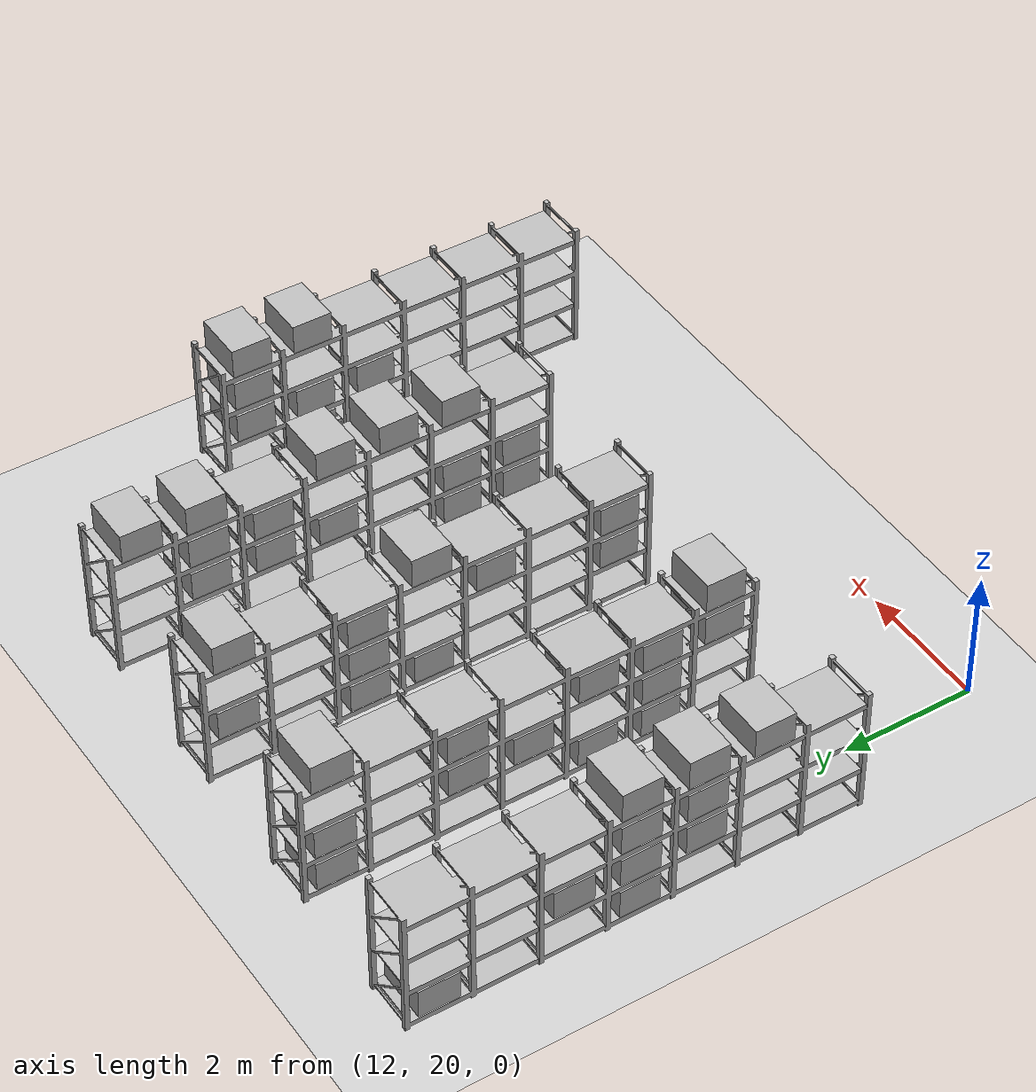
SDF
<sdf version="1.6">
 <world name="default">
  <model name="ground_plane">
   <static>1</static>
   <link name="link">
    <collision name="collision">
     <geometry><plane><normal>0 0 1</normal><size>100 100</size></plane></geometry>
     <surface><friction><ode><mu>100</mu><mu2>50</mu2></ode></friction></surface>
    </collision>
    <visual name="visual">
     <cast_shadows>0</cast_shadows>
     <geometry><plane><normal>0 0 1</normal><size>100 100</size></plane></geometry>
     <material>
      <script><uri>file://media/materials/scripts/gazebo.material</uri><name>Gazebo/Grey</name></script>
     </material>
    </visual>
   </link>
  </model>
  <include>
   <name>rack_C1_0</name>
   <uri>model://warehouse_rack_4lvl_6bay</uri>
   <pose>21.162 23.255 0 0 0 3.1416</pose>
  </include>
  <model name="box_C_001">
   <pose>21.162 25.654 0.907 0 0 3.1416</pose>
   <link name="link">
    <inertial>
     <mass>8.0</mass>
     <inertia><ixx>0.37500</ixx><iyy>0.54060</iyy><izz>0.64560</izz><ixy>0</ixy><ixz>0</ixz><iyz>0</iyz></inertia>
    </inertial>
    <collision name="collision">
     <geometry><box><size>0.78 0.6 0.45</size></box></geometry>
     <surface><friction><ode><mu>1.0</mu><mu2>1.0</mu2></ode></friction></surface>
    </collision>
    <visual name="visual">
     <cast_shadows>0</cast_shadows>
     <geometry><box><size>0.78 0.6 0.45</size></box></geometry>
     <material>
      <script>
       <uri>model://labeled_boxes/materials/scripts</uri>
       <uri>model://labeled_boxes/materials/textures</uri>
       <name>LabeledBox/C-001</name>
      </script>
     </material>
    </visual>
   </link>
  </model>
  <model name="box_C_002">
   <pose>21.162 25.654 1.487 0 0 3.1416</pose>
   <link name="link">
    <inertial>
     <mass>8.0</mass>
     <inertia><ixx>0.37500</ixx><iyy>0.54060</iyy><izz>0.64560</izz><ixy>0</ixy><ixz>0</ixz><iyz>0</iyz></inertia>
    </inertial>
    <collision name="collision">
     <geometry><box><size>0.78 0.6 0.45</size></box></geometry>
     <surface><friction><ode><mu>1.0</mu><mu2>1.0</mu2></ode></friction></surface>
    </collision>
    <visual name="visual">
     <cast_shadows>0</cast_shadows>
     <geometry><box><size>0.78 0.6 0.45</size></box></geometry>
     <material>
      <script>
       <uri>model://labeled_boxes/materials/scripts</uri>
       <uri>model://labeled_boxes/materials/textures</uri>
       <name>LabeledBox/C-002</name>
      </script>
     </material>
    </visual>
   </link>
  </model>
  <model name="box_C_003">
   <pose>21.162 25.654 2.067 0 0 3.1416</pose>
   <link name="link">
    <inertial>
     <mass>8.0</mass>
     <inertia><ixx>0.37500</ixx><iyy>0.54060</iyy><izz>0.64560</izz><ixy>0</ixy><ixz>0</ixz><iyz>0</iyz></inertia>
    </inertial>
    <collision name="collision">
     <geometry><box><size>0.78 0.6 0.45</size></box></geometry>
     <surface><friction><ode><mu>1.0</mu><mu2>1.0</mu2></ode></friction></surface>
    </collision>
    <visual name="visual">
     <cast_shadows>0</cast_shadows>
     <geometry><box><size>0.78 0.6 0.45</size></box></geometry>
     <material>
      <script>
       <uri>model://labeled_boxes/materials/scripts</uri>
       <uri>model://labeled_boxes/materials/textures</uri>
       <name>LabeledBox/C-003</name>
      </script>
     </material>
    </visual>
   </link>
  </model>
  <model name="box_C_004">
   <pose>21.162 24.705 0.327 0 0 3.1416</pose>
   <link name="link">
    <inertial>
     <mass>8.0</mass>
     <inertia><ixx>0.37500</ixx><iyy>0.54060</iyy><izz>0.64560</izz><ixy>0</ixy><ixz>0</ixz><iyz>0</iyz></inertia>
    </inertial>
    <collision name="collision">
     <geometry><box><size>0.78 0.6 0.45</size></box></geometry>
     <surface><friction><ode><mu>1.0</mu><mu2>1.0</mu2></ode></friction></surface>
    </collision>
    <visual name="visual">
     <cast_shadows>0</cast_shadows>
     <geometry><box><size>0.78 0.6 0.45</size></box></geometry>
     <material>
      <script>
       <uri>model://labeled_boxes/materials/scripts</uri>
       <uri>model://labeled_boxes/materials/textures</uri>
       <name>LabeledBox/C-004</name>
      </script>
     </material>
    </visual>
   </link>
  </model>
  <model name="box_C_005">
   <pose>21.162 24.705 0.907 0 0 3.1416</pose>
   <link name="link">
    <inertial>
     <mass>8.0</mass>
     <inertia><ixx>0.37500</ixx><iyy>0.54060</iyy><izz>0.64560</izz><ixy>0</ixy><ixz>0</ixz><iyz>0</iyz></inertia>
    </inertial>
    <collision name="collision">
     <geometry><box><size>0.78 0.6 0.45</size></box></geometry>
     <surface><friction><ode><mu>1.0</mu><mu2>1.0</mu2></ode></friction></surface>
    </collision>
    <visual name="visual">
     <cast_shadows>0</cast_shadows>
     <geometry><box><size>0.78 0.6 0.45</size></box></geometry>
     <material>
      <script>
       <uri>model://labeled_boxes/materials/scripts</uri>
       <uri>model://labeled_boxes/materials/textures</uri>
       <name>LabeledBox/C-005</name>
      </script>
     </material>
    </visual>
   </link>
  </model>
  <model name="box_C_006">
   <pose>21.162 24.705 2.067 0 0 3.1416</pose>
   <link name="link">
    <inertial>
     <mass>8.0</mass>
     <inertia><ixx>0.37500</ixx><iyy>0.54060</iyy><izz>0.64560</izz><ixy>0</ixy><ixz>0</ixz><iyz>0</iyz></inertia>
    </inertial>
    <collision name="collision">
     <geometry><box><size>0.78 0.6 0.45</size></box></geometry>
     <surface><friction><ode><mu>1.0</mu><mu2>1.0</mu2></ode></friction></surface>
    </collision>
    <visual name="visual">
     <cast_shadows>0</cast_shadows>
     <geometry><box><size>0.78 0.6 0.45</size></box></geometry>
     <material>
      <script>
       <uri>model://labeled_boxes/materials/scripts</uri>
       <uri>model://labeled_boxes/materials/textures</uri>
       <name>LabeledBox/C-006</name>
      </script>
     </material>
    </visual>
   </link>
  </model>
  <model name="box_C_007">
   <pose>21.162 23.738 0.907 0 0 3.1416</pose>
   <link name="link">
    <inertial>
     <mass>8.0</mass>
     <inertia><ixx>0.37500</ixx><iyy>0.54060</iyy><izz>0.64560</izz><ixy>0</ixy><ixz>0</ixz><iyz>0</iyz></inertia>
    </inertial>
    <collision name="collision">
     <geometry><box><size>0.78 0.6 0.45</size></box></geometry>
     <surface><friction><ode><mu>1.0</mu><mu2>1.0</mu2></ode></friction></surface>
    </collision>
    <visual name="visual">
     <cast_shadows>0</cast_shadows>
     <geometry><box><size>0.78 0.6 0.45</size></box></geometry>
     <material>
      <script>
       <uri>model://labeled_boxes/materials/scripts</uri>
       <uri>model://labeled_boxes/materials/textures</uri>
       <name>LabeledBox/C-007</name>
      </script>
     </material>
    </visual>
   </link>
  </model>
  <include>
   <name>rack_C2_0</name>
   <uri>model://warehouse_rack_4lvl_7bay</uri>
   <pose>18.762 25.755 0 0 0 3.1416</pose>
  </include>
  <model name="box_C_011">
   <pose>18.762 28.652 2.067 0 0 3.1416</pose>
   <link name="link">
    <inertial>
     <mass>8.0</mass>
     <inertia><ixx>0.37500</ixx><iyy>0.54060</iyy><izz>0.64560</izz><ixy>0</ixy><ixz>0</ixz><iyz>0</iyz></inertia>
    </inertial>
    <collision name="collision">
     <geometry><box><size>0.78 0.6 0.45</size></box></geometry>
     <surface><friction><ode><mu>1.0</mu><mu2>1.0</mu2></ode></friction></surface>
    </collision>
    <visual name="visual">
     <cast_shadows>0</cast_shadows>
     <geometry><box><size>0.78 0.6 0.45</size></box></geometry>
     <material>
      <script>
       <uri>model://labeled_boxes/materials/scripts</uri>
       <uri>model://labeled_boxes/materials/textures</uri>
       <name>LabeledBox/C-011</name>
      </script>
     </material>
    </visual>
   </link>
  </model>
  <model name="box_C_012">
   <pose>18.762 27.698 0.907 0 0 3.1416</pose>
   <link name="link">
    <inertial>
     <mass>8.0</mass>
     <inertia><ixx>0.37500</ixx><iyy>0.54060</iyy><izz>0.64560</izz><ixy>0</ixy><ixz>0</ixz><iyz>0</iyz></inertia>
    </inertial>
    <collision name="collision">
     <geometry><box><size>0.78 0.6 0.45</size></box></geometry>
     <surface><friction><ode><mu>1.0</mu><mu2>1.0</mu2></ode></friction></surface>
    </collision>
    <visual name="visual">
     <cast_shadows>0</cast_shadows>
     <geometry><box><size>0.78 0.6 0.45</size></box></geometry>
     <material>
      <script>
       <uri>model://labeled_boxes/materials/scripts</uri>
       <uri>model://labeled_boxes/materials/textures</uri>
       <name>LabeledBox/C-012</name>
      </script>
     </material>
    </visual>
   </link>
  </model>
  <model name="box_C_013">
   <pose>18.762 27.698 1.487 0 0 3.1416</pose>
   <link name="link">
    <inertial>
     <mass>8.0</mass>
     <inertia><ixx>0.37500</ixx><iyy>0.54060</iyy><izz>0.64560</izz><ixy>0</ixy><ixz>0</ixz><iyz>0</iyz></inertia>
    </inertial>
    <collision name="collision">
     <geometry><box><size>0.78 0.6 0.45</size></box></geometry>
     <surface><friction><ode><mu>1.0</mu><mu2>1.0</mu2></ode></friction></surface>
    </collision>
    <visual name="visual">
     <cast_shadows>0</cast_shadows>
     <geometry><box><size>0.78 0.6 0.45</size></box></geometry>
     <material>
      <script>
       <uri>model://labeled_boxes/materials/scripts</uri>
       <uri>model://labeled_boxes/materials/textures</uri>
       <name>LabeledBox/C-013</name>
      </script>
     </material>
    </visual>
   </link>
  </model>
  <model name="box_C_014">
   <pose>18.762 27.698 2.067 0 0 3.1416</pose>
   <link name="link">
    <inertial>
     <mass>8.0</mass>
     <inertia><ixx>0.37500</ixx><iyy>0.54060</iyy><izz>0.64560</izz><ixy>0</ixy><ixz>0</ixz><iyz>0</iyz></inertia>
    </inertial>
    <collision name="collision">
     <geometry><box><size>0.78 0.6 0.45</size></box></geometry>
     <surface><friction><ode><mu>1.0</mu><mu2>1.0</mu2></ode></friction></surface>
    </collision>
    <visual name="visual">
     <cast_shadows>0</cast_shadows>
     <geometry><box><size>0.78 0.6 0.45</size></box></geometry>
     <material>
      <script>
       <uri>model://labeled_boxes/materials/scripts</uri>
       <uri>model://labeled_boxes/materials/textures</uri>
       <name>LabeledBox/C-014</name>
      </script>
     </material>
    </visual>
   </link>
  </model>
  <model name="box_C_015">
   <pose>18.762 26.726 0.907 0 0 3.1416</pose>
   <link name="link">
    <inertial>
     <mass>8.0</mass>
     <inertia><ixx>0.37500</ixx><iyy>0.54060</iyy><izz>0.64560</izz><ixy>0</ixy><ixz>0</ixz><iyz>0</iyz></inertia>
    </inertial>
    <collision name="collision">
     <geometry><box><size>0.78 0.6 0.45</size></box></geometry>
     <surface><friction><ode><mu>1.0</mu><mu2>1.0</mu2></ode></friction></surface>
    </collision>
    <visual name="visual">
     <cast_shadows>0</cast_shadows>
     <geometry><box><size>0.78 0.6 0.45</size></box></geometry>
     <material>
      <script>
       <uri>model://labeled_boxes/materials/scripts</uri>
       <uri>model://labeled_boxes/materials/textures</uri>
       <name>LabeledBox/C-015</name>
      </script>
     </material>
    </visual>
   </link>
  </model>
  <model name="box_C_016">
   <pose>18.762 26.726 1.487 0 0 3.1416</pose>
   <link name="link">
    <inertial>
     <mass>8.0</mass>
     <inertia><ixx>0.37500</ixx><iyy>0.54060</iyy><izz>0.64560</izz><ixy>0</ixy><ixz>0</ixz><iyz>0</iyz></inertia>
    </inertial>
    <collision name="collision">
     <geometry><box><size>0.78 0.6 0.45</size></box></geometry>
     <surface><friction><ode><mu>1.0</mu><mu2>1.0</mu2></ode></friction></surface>
    </collision>
    <visual name="visual">
     <cast_shadows>0</cast_shadows>
     <geometry><box><size>0.78 0.6 0.45</size></box></geometry>
     <material>
      <script>
       <uri>model://labeled_boxes/materials/scripts</uri>
       <uri>model://labeled_boxes/materials/textures</uri>
       <name>LabeledBox/C-016</name>
      </script>
     </material>
    </visual>
   </link>
  </model>
  <model name="box_C_017">
   <pose>18.762 25.755 0.907 0 0 3.1416</pose>
   <link name="link">
    <inertial>
     <mass>8.0</mass>
     <inertia><ixx>0.37500</ixx><iyy>0.54060</iyy><izz>0.64560</izz><ixy>0</ixy><ixz>0</ixz><iyz>0</iyz></inertia>
    </inertial>
    <collision name="collision">
     <geometry><box><size>0.78 0.6 0.45</size></box></geometry>
     <surface><friction><ode><mu>1.0</mu><mu2>1.0</mu2></ode></friction></surface>
    </collision>
    <visual name="visual">
     <cast_shadows>0</cast_shadows>
     <geometry><box><size>0.78 0.6 0.45</size></box></geometry>
     <material>
      <script>
       <uri>model://labeled_boxes/materials/scripts</uri>
       <uri>model://labeled_boxes/materials/textures</uri>
       <name>LabeledBox/C-017</name>
      </script>
     </material>
    </visual>
   </link>
  </model>
  <model name="box_C_018">
   <pose>18.762 25.755 2.067 0 0 3.1416</pose>
   <link name="link">
    <inertial>
     <mass>8.0</mass>
     <inertia><ixx>0.37500</ixx><iyy>0.54060</iyy><izz>0.64560</izz><ixy>0</ixy><ixz>0</ixz><iyz>0</iyz></inertia>
    </inertial>
    <collision name="collision">
     <geometry><box><size>0.78 0.6 0.45</size></box></geometry>
     <surface><friction><ode><mu>1.0</mu><mu2>1.0</mu2></ode></friction></surface>
    </collision>
    <visual name="visual">
     <cast_shadows>0</cast_shadows>
     <geometry><box><size>0.78 0.6 0.45</size></box></geometry>
     <material>
      <script>
       <uri>model://labeled_boxes/materials/scripts</uri>
       <uri>model://labeled_boxes/materials/textures</uri>
       <name>LabeledBox/C-018</name>
      </script>
     </material>
    </visual>
   </link>
  </model>
  <model name="box_C_019">
   <pose>18.762 24.783 2.067 0 0 3.1416</pose>
   <link name="link">
    <inertial>
     <mass>8.0</mass>
     <inertia><ixx>0.37500</ixx><iyy>0.54060</iyy><izz>0.64560</izz><ixy>0</ixy><ixz>0</ixz><iyz>0</iyz></inertia>
    </inertial>
    <collision name="collision">
     <geometry><box><size>0.78 0.6 0.45</size></box></geometry>
     <surface><friction><ode><mu>1.0</mu><mu2>1.0</mu2></ode></friction></surface>
    </collision>
    <visual name="visual">
     <cast_shadows>0</cast_shadows>
     <geometry><box><size>0.78 0.6 0.45</size></box></geometry>
     <material>
      <script>
       <uri>model://labeled_boxes/materials/scripts</uri>
       <uri>model://labeled_boxes/materials/textures</uri>
       <name>LabeledBox/C-019</name>
      </script>
     </material>
    </visual>
   </link>
  </model>
  <model name="box_C_020">
   <pose>18.762 23.812 0.327 0 0 3.1416</pose>
   <link name="link">
    <inertial>
     <mass>8.0</mass>
     <inertia><ixx>0.37500</ixx><iyy>0.54060</iyy><izz>0.64560</izz><ixy>0</ixy><ixz>0</ixz><iyz>0</iyz></inertia>
    </inertial>
    <collision name="collision">
     <geometry><box><size>0.78 0.6 0.45</size></box></geometry>
     <surface><friction><ode><mu>1.0</mu><mu2>1.0</mu2></ode></friction></surface>
    </collision>
    <visual name="visual">
     <cast_shadows>0</cast_shadows>
     <geometry><box><size>0.78 0.6 0.45</size></box></geometry>
     <material>
      <script>
       <uri>model://labeled_boxes/materials/scripts</uri>
       <uri>model://labeled_boxes/materials/textures</uri>
       <name>LabeledBox/C-020</name>
      </script>
     </material>
    </visual>
   </link>
  </model>
  <model name="box_C_021">
   <pose>18.762 23.812 0.907 0 0 3.1416</pose>
   <link name="link">
    <inertial>
     <mass>8.0</mass>
     <inertia><ixx>0.37500</ixx><iyy>0.54060</iyy><izz>0.64560</izz><ixy>0</ixy><ixz>0</ixz><iyz>0</iyz></inertia>
    </inertial>
    <collision name="collision">
     <geometry><box><size>0.78 0.6 0.45</size></box></geometry>
     <surface><friction><ode><mu>1.0</mu><mu2>1.0</mu2></ode></friction></surface>
    </collision>
    <visual name="visual">
     <cast_shadows>0</cast_shadows>
     <geometry><box><size>0.78 0.6 0.45</size></box></geometry>
     <material>
      <script>
       <uri>model://labeled_boxes/materials/scripts</uri>
       <uri>model://labeled_boxes/materials/textures</uri>
       <name>LabeledBox/C-021</name>
      </script>
     </material>
    </visual>
   </link>
  </model>
  <model name="box_C_022">
   <pose>18.762 23.812 2.067 0 0 3.1416</pose>
   <link name="link">
    <inertial>
     <mass>8.0</mass>
     <inertia><ixx>0.37500</ixx><iyy>0.54060</iyy><izz>0.64560</izz><ixy>0</ixy><ixz>0</ixz><iyz>0</iyz></inertia>
    </inertial>
    <collision name="collision">
     <geometry><box><size>0.78 0.6 0.45</size></box></geometry>
     <surface><friction><ode><mu>1.0</mu><mu2>1.0</mu2></ode></friction></surface>
    </collision>
    <visual name="visual">
     <cast_shadows>0</cast_shadows>
     <geometry><box><size>0.78 0.6 0.45</size></box></geometry>
     <material>
      <script>
       <uri>model://labeled_boxes/materials/scripts</uri>
       <uri>model://labeled_boxes/materials/textures</uri>
       <name>LabeledBox/C-022</name>
      </script>
     </material>
    </visual>
   </link>
  </model>
  <model name="box_C_023">
   <pose>18.762 22.858 0.327 0 0 3.1416</pose>
   <link name="link">
    <inertial>
     <mass>8.0</mass>
     <inertia><ixx>0.37500</ixx><iyy>0.54060</iyy><izz>0.64560</izz><ixy>0</ixy><ixz>0</ixz><iyz>0</iyz></inertia>
    </inertial>
    <collision name="collision">
     <geometry><box><size>0.78 0.6 0.45</size></box></geometry>
     <surface><friction><ode><mu>1.0</mu><mu2>1.0</mu2></ode></friction></surface>
    </collision>
    <visual name="visual">
     <cast_shadows>0</cast_shadows>
     <geometry><box><size>0.78 0.6 0.45</size></box></geometry>
     <material>
      <script>
       <uri>model://labeled_boxes/materials/scripts</uri>
       <uri>model://labeled_boxes/materials/textures</uri>
       <name>LabeledBox/C-023</name>
      </script>
     </material>
    </visual>
   </link>
  </model>
  <model name="box_C_024">
   <pose>18.762 22.858 0.907 0 0 3.1416</pose>
   <link name="link">
    <inertial>
     <mass>8.0</mass>
     <inertia><ixx>0.37500</ixx><iyy>0.54060</iyy><izz>0.64560</izz><ixy>0</ixy><ixz>0</ixz><iyz>0</iyz></inertia>
    </inertial>
    <collision name="collision">
     <geometry><box><size>0.78 0.6 0.45</size></box></geometry>
     <surface><friction><ode><mu>1.0</mu><mu2>1.0</mu2></ode></friction></surface>
    </collision>
    <visual name="visual">
     <cast_shadows>0</cast_shadows>
     <geometry><box><size>0.78 0.6 0.45</size></box></geometry>
     <material>
      <script>
       <uri>model://labeled_boxes/materials/scripts</uri>
       <uri>model://labeled_boxes/materials/textures</uri>
       <name>LabeledBox/C-024</name>
      </script>
     </material>
    </visual>
   </link>
  </model>
  <include>
   <name>rack_C3_0</name>
   <uri>model://warehouse_rack_4lvl_7bay</uri>
   <pose>16.362 25.755 0 0 0 3.1416</pose>
  </include>
  <model name="box_C_036">
   <pose>16.362 28.652 0.907 0 0 3.1416</pose>
   <link name="link">
    <inertial>
     <mass>8.0</mass>
     <inertia><ixx>0.37500</ixx><iyy>0.54060</iyy><izz>0.64560</izz><ixy>0</ixy><ixz>0</ixz><iyz>0</iyz></inertia>
    </inertial>
    <collision name="collision">
     <geometry><box><size>0.78 0.6 0.45</size></box></geometry>
     <surface><friction><ode><mu>1.0</mu><mu2>1.0</mu2></ode></friction></surface>
    </collision>
    <visual name="visual">
     <cast_shadows>0</cast_shadows>
     <geometry><box><size>0.78 0.6 0.45</size></box></geometry>
     <material>
      <script>
       <uri>model://labeled_boxes/materials/scripts</uri>
       <uri>model://labeled_boxes/materials/textures</uri>
       <name>LabeledBox/C-036</name>
      </script>
     </material>
    </visual>
   </link>
  </model>
  <model name="box_C_037">
   <pose>16.362 28.652 2.067 0 0 3.1416</pose>
   <link name="link">
    <inertial>
     <mass>8.0</mass>
     <inertia><ixx>0.37500</ixx><iyy>0.54060</iyy><izz>0.64560</izz><ixy>0</ixy><ixz>0</ixz><iyz>0</iyz></inertia>
    </inertial>
    <collision name="collision">
     <geometry><box><size>0.78 0.6 0.45</size></box></geometry>
     <surface><friction><ode><mu>1.0</mu><mu2>1.0</mu2></ode></friction></surface>
    </collision>
    <visual name="visual">
     <cast_shadows>0</cast_shadows>
     <geometry><box><size>0.78 0.6 0.45</size></box></geometry>
     <material>
      <script>
       <uri>model://labeled_boxes/materials/scripts</uri>
       <uri>model://labeled_boxes/materials/textures</uri>
       <name>LabeledBox/C-037</name>
      </script>
     </material>
    </visual>
   </link>
  </model>
  <model name="box_C_038">
   <pose>16.362 26.726 0.327 0 0 3.1416</pose>
   <link name="link">
    <inertial>
     <mass>8.0</mass>
     <inertia><ixx>0.37500</ixx><iyy>0.54060</iyy><izz>0.64560</izz><ixy>0</ixy><ixz>0</ixz><iyz>0</iyz></inertia>
    </inertial>
    <collision name="collision">
     <geometry><box><size>0.78 0.6 0.45</size></box></geometry>
     <surface><friction><ode><mu>1.0</mu><mu2>1.0</mu2></ode></friction></surface>
    </collision>
    <visual name="visual">
     <cast_shadows>0</cast_shadows>
     <geometry><box><size>0.78 0.6 0.45</size></box></geometry>
     <material>
      <script>
       <uri>model://labeled_boxes/materials/scripts</uri>
       <uri>model://labeled_boxes/materials/textures</uri>
       <name>LabeledBox/C-038</name>
      </script>
     </material>
    </visual>
   </link>
  </model>
  <model name="box_C_039">
   <pose>16.362 26.726 0.907 0 0 3.1416</pose>
   <link name="link">
    <inertial>
     <mass>8.0</mass>
     <inertia><ixx>0.37500</ixx><iyy>0.54060</iyy><izz>0.64560</izz><ixy>0</ixy><ixz>0</ixz><iyz>0</iyz></inertia>
    </inertial>
    <collision name="collision">
     <geometry><box><size>0.78 0.6 0.45</size></box></geometry>
     <surface><friction><ode><mu>1.0</mu><mu2>1.0</mu2></ode></friction></surface>
    </collision>
    <visual name="visual">
     <cast_shadows>0</cast_shadows>
     <geometry><box><size>0.78 0.6 0.45</size></box></geometry>
     <material>
      <script>
       <uri>model://labeled_boxes/materials/scripts</uri>
       <uri>model://labeled_boxes/materials/textures</uri>
       <name>LabeledBox/C-039</name>
      </script>
     </material>
    </visual>
   </link>
  </model>
  <model name="box_C_040">
   <pose>16.362 26.726 1.487 0 0 3.1416</pose>
   <link name="link">
    <inertial>
     <mass>8.0</mass>
     <inertia><ixx>0.37500</ixx><iyy>0.54060</iyy><izz>0.64560</izz><ixy>0</ixy><ixz>0</ixz><iyz>0</iyz></inertia>
    </inertial>
    <collision name="collision">
     <geometry><box><size>0.78 0.6 0.45</size></box></geometry>
     <surface><friction><ode><mu>1.0</mu><mu2>1.0</mu2></ode></friction></surface>
    </collision>
    <visual name="visual">
     <cast_shadows>0</cast_shadows>
     <geometry><box><size>0.78 0.6 0.45</size></box></geometry>
     <material>
      <script>
       <uri>model://labeled_boxes/materials/scripts</uri>
       <uri>model://labeled_boxes/materials/textures</uri>
       <name>LabeledBox/C-040</name>
      </script>
     </material>
    </visual>
   </link>
  </model>
  <model name="box_C_041">
   <pose>16.362 25.755 0.327 0 0 3.1416</pose>
   <link name="link">
    <inertial>
     <mass>8.0</mass>
     <inertia><ixx>0.37500</ixx><iyy>0.54060</iyy><izz>0.64560</izz><ixy>0</ixy><ixz>0</ixz><iyz>0</iyz></inertia>
    </inertial>
    <collision name="collision">
     <geometry><box><size>0.78 0.6 0.45</size></box></geometry>
     <surface><friction><ode><mu>1.0</mu><mu2>1.0</mu2></ode></friction></surface>
    </collision>
    <visual name="visual">
     <cast_shadows>0</cast_shadows>
     <geometry><box><size>0.78 0.6 0.45</size></box></geometry>
     <material>
      <script>
       <uri>model://labeled_boxes/materials/scripts</uri>
       <uri>model://labeled_boxes/materials/textures</uri>
       <name>LabeledBox/C-041</name>
      </script>
     </material>
    </visual>
   </link>
  </model>
  <model name="box_C_042">
   <pose>16.362 25.755 2.067 0 0 3.1416</pose>
   <link name="link">
    <inertial>
     <mass>8.0</mass>
     <inertia><ixx>0.37500</ixx><iyy>0.54060</iyy><izz>0.64560</izz><ixy>0</ixy><ixz>0</ixz><iyz>0</iyz></inertia>
    </inertial>
    <collision name="collision">
     <geometry><box><size>0.78 0.6 0.45</size></box></geometry>
     <surface><friction><ode><mu>1.0</mu><mu2>1.0</mu2></ode></friction></surface>
    </collision>
    <visual name="visual">
     <cast_shadows>0</cast_shadows>
     <geometry><box><size>0.78 0.6 0.45</size></box></geometry>
     <material>
      <script>
       <uri>model://labeled_boxes/materials/scripts</uri>
       <uri>model://labeled_boxes/materials/textures</uri>
       <name>LabeledBox/C-042</name>
      </script>
     </material>
    </visual>
   </link>
  </model>
  <model name="box_C_043">
   <pose>16.362 24.783 1.487 0 0 3.1416</pose>
   <link name="link">
    <inertial>
     <mass>8.0</mass>
     <inertia><ixx>0.37500</ixx><iyy>0.54060</iyy><izz>0.64560</izz><ixy>0</ixy><ixz>0</ixz><iyz>0</iyz></inertia>
    </inertial>
    <collision name="collision">
     <geometry><box><size>0.78 0.6 0.45</size></box></geometry>
     <surface><friction><ode><mu>1.0</mu><mu2>1.0</mu2></ode></friction></surface>
    </collision>
    <visual name="visual">
     <cast_shadows>0</cast_shadows>
     <geometry><box><size>0.78 0.6 0.45</size></box></geometry>
     <material>
      <script>
       <uri>model://labeled_boxes/materials/scripts</uri>
       <uri>model://labeled_boxes/materials/textures</uri>
       <name>LabeledBox/C-043</name>
      </script>
     </material>
    </visual>
   </link>
  </model>
  <model name="box_C_044">
   <pose>16.362 22.858 0.907 0 0 3.1416</pose>
   <link name="link">
    <inertial>
     <mass>8.0</mass>
     <inertia><ixx>0.37500</ixx><iyy>0.54060</iyy><izz>0.64560</izz><ixy>0</ixy><ixz>0</ixz><iyz>0</iyz></inertia>
    </inertial>
    <collision name="collision">
     <geometry><box><size>0.78 0.6 0.45</size></box></geometry>
     <surface><friction><ode><mu>1.0</mu><mu2>1.0</mu2></ode></friction></surface>
    </collision>
    <visual name="visual">
     <cast_shadows>0</cast_shadows>
     <geometry><box><size>0.78 0.6 0.45</size></box></geometry>
     <material>
      <script>
       <uri>model://labeled_boxes/materials/scripts</uri>
       <uri>model://labeled_boxes/materials/textures</uri>
       <name>LabeledBox/C-044</name>
      </script>
     </material>
    </visual>
   </link>
  </model>
  <model name="box_C_045">
   <pose>16.362 22.858 1.487 0 0 3.1416</pose>
   <link name="link">
    <inertial>
     <mass>8.0</mass>
     <inertia><ixx>0.37500</ixx><iyy>0.54060</iyy><izz>0.64560</izz><ixy>0</ixy><ixz>0</ixz><iyz>0</iyz></inertia>
    </inertial>
    <collision name="collision">
     <geometry><box><size>0.78 0.6 0.45</size></box></geometry>
     <surface><friction><ode><mu>1.0</mu><mu2>1.0</mu2></ode></friction></surface>
    </collision>
    <visual name="visual">
     <cast_shadows>0</cast_shadows>
     <geometry><box><size>0.78 0.6 0.45</size></box></geometry>
     <material>
      <script>
       <uri>model://labeled_boxes/materials/scripts</uri>
       <uri>model://labeled_boxes/materials/textures</uri>
       <name>LabeledBox/C-045</name>
      </script>
     </material>
    </visual>
   </link>
  </model>
  <include>
   <name>rack_C4_0</name>
   <uri>model://warehouse_rack_4lvl_7bay</uri>
   <pose>13.962 25.755 0 0 0 3.1416</pose>
  </include>
  <model name="box_C_058">
   <pose>13.962 28.652 0.327 0 0 3.1416</pose>
   <link name="link">
    <inertial>
     <mass>8.0</mass>
     <inertia><ixx>0.37500</ixx><iyy>0.54060</iyy><izz>0.64560</izz><ixy>0</ixy><ixz>0</ixz><iyz>0</iyz></inertia>
    </inertial>
    <collision name="collision">
     <geometry><box><size>0.78 0.6 0.45</size></box></geometry>
     <surface><friction><ode><mu>1.0</mu><mu2>1.0</mu2></ode></friction></surface>
    </collision>
    <visual name="visual">
     <cast_shadows>0</cast_shadows>
     <geometry><box><size>0.78 0.6 0.45</size></box></geometry>
     <material>
      <script>
       <uri>model://labeled_boxes/materials/scripts</uri>
       <uri>model://labeled_boxes/materials/textures</uri>
       <name>LabeledBox/C-058</name>
      </script>
     </material>
    </visual>
   </link>
  </model>
  <model name="box_C_059">
   <pose>13.962 28.652 0.907 0 0 3.1416</pose>
   <link name="link">
    <inertial>
     <mass>8.0</mass>
     <inertia><ixx>0.37500</ixx><iyy>0.54060</iyy><izz>0.64560</izz><ixy>0</ixy><ixz>0</ixz><iyz>0</iyz></inertia>
    </inertial>
    <collision name="collision">
     <geometry><box><size>0.78 0.6 0.45</size></box></geometry>
     <surface><friction><ode><mu>1.0</mu><mu2>1.0</mu2></ode></friction></surface>
    </collision>
    <visual name="visual">
     <cast_shadows>0</cast_shadows>
     <geometry><box><size>0.78 0.6 0.45</size></box></geometry>
     <material>
      <script>
       <uri>model://labeled_boxes/materials/scripts</uri>
       <uri>model://labeled_boxes/materials/textures</uri>
       <name>LabeledBox/C-059</name>
      </script>
     </material>
    </visual>
   </link>
  </model>
  <model name="box_C_060">
   <pose>13.962 28.652 2.067 0 0 3.1416</pose>
   <link name="link">
    <inertial>
     <mass>8.0</mass>
     <inertia><ixx>0.37500</ixx><iyy>0.54060</iyy><izz>0.64560</izz><ixy>0</ixy><ixz>0</ixz><iyz>0</iyz></inertia>
    </inertial>
    <collision name="collision">
     <geometry><box><size>0.78 0.6 0.45</size></box></geometry>
     <surface><friction><ode><mu>1.0</mu><mu2>1.0</mu2></ode></friction></surface>
    </collision>
    <visual name="visual">
     <cast_shadows>0</cast_shadows>
     <geometry><box><size>0.78 0.6 0.45</size></box></geometry>
     <material>
      <script>
       <uri>model://labeled_boxes/materials/scripts</uri>
       <uri>model://labeled_boxes/materials/textures</uri>
       <name>LabeledBox/C-060</name>
      </script>
     </material>
    </visual>
   </link>
  </model>
  <model name="box_C_061">
   <pose>13.962 26.726 0.907 0 0 3.1416</pose>
   <link name="link">
    <inertial>
     <mass>8.0</mass>
     <inertia><ixx>0.37500</ixx><iyy>0.54060</iyy><izz>0.64560</izz><ixy>0</ixy><ixz>0</ixz><iyz>0</iyz></inertia>
    </inertial>
    <collision name="collision">
     <geometry><box><size>0.78 0.6 0.45</size></box></geometry>
     <surface><friction><ode><mu>1.0</mu><mu2>1.0</mu2></ode></friction></surface>
    </collision>
    <visual name="visual">
     <cast_shadows>0</cast_shadows>
     <geometry><box><size>0.78 0.6 0.45</size></box></geometry>
     <material>
      <script>
       <uri>model://labeled_boxes/materials/scripts</uri>
       <uri>model://labeled_boxes/materials/textures</uri>
       <name>LabeledBox/C-061</name>
      </script>
     </material>
    </visual>
   </link>
  </model>
  <model name="box_C_062">
   <pose>13.962 26.726 1.487 0 0 3.1416</pose>
   <link name="link">
    <inertial>
     <mass>8.0</mass>
     <inertia><ixx>0.37500</ixx><iyy>0.54060</iyy><izz>0.64560</izz><ixy>0</ixy><ixz>0</ixz><iyz>0</iyz></inertia>
    </inertial>
    <collision name="collision">
     <geometry><box><size>0.78 0.6 0.45</size></box></geometry>
     <surface><friction><ode><mu>1.0</mu><mu2>1.0</mu2></ode></friction></surface>
    </collision>
    <visual name="visual">
     <cast_shadows>0</cast_shadows>
     <geometry><box><size>0.78 0.6 0.45</size></box></geometry>
     <material>
      <script>
       <uri>model://labeled_boxes/materials/scripts</uri>
       <uri>model://labeled_boxes/materials/textures</uri>
       <name>LabeledBox/C-062</name>
      </script>
     </material>
    </visual>
   </link>
  </model>
  <model name="box_C_063">
   <pose>13.962 25.755 0.907 0 0 3.1416</pose>
   <link name="link">
    <inertial>
     <mass>8.0</mass>
     <inertia><ixx>0.37500</ixx><iyy>0.54060</iyy><izz>0.64560</izz><ixy>0</ixy><ixz>0</ixz><iyz>0</iyz></inertia>
    </inertial>
    <collision name="collision">
     <geometry><box><size>0.78 0.6 0.45</size></box></geometry>
     <surface><friction><ode><mu>1.0</mu><mu2>1.0</mu2></ode></friction></surface>
    </collision>
    <visual name="visual">
     <cast_shadows>0</cast_shadows>
     <geometry><box><size>0.78 0.6 0.45</size></box></geometry>
     <material>
      <script>
       <uri>model://labeled_boxes/materials/scripts</uri>
       <uri>model://labeled_boxes/materials/textures</uri>
       <name>LabeledBox/C-063</name>
      </script>
     </material>
    </visual>
   </link>
  </model>
  <model name="box_C_064">
   <pose>13.962 24.783 0.327 0 0 3.1416</pose>
   <link name="link">
    <inertial>
     <mass>8.0</mass>
     <inertia><ixx>0.37500</ixx><iyy>0.54060</iyy><izz>0.64560</izz><ixy>0</ixy><ixz>0</ixz><iyz>0</iyz></inertia>
    </inertial>
    <collision name="collision">
     <geometry><box><size>0.78 0.6 0.45</size></box></geometry>
     <surface><friction><ode><mu>1.0</mu><mu2>1.0</mu2></ode></friction></surface>
    </collision>
    <visual name="visual">
     <cast_shadows>0</cast_shadows>
     <geometry><box><size>0.78 0.6 0.45</size></box></geometry>
     <material>
      <script>
       <uri>model://labeled_boxes/materials/scripts</uri>
       <uri>model://labeled_boxes/materials/textures</uri>
       <name>LabeledBox/C-064</name>
      </script>
     </material>
    </visual>
   </link>
  </model>
  <model name="box_C_065">
   <pose>13.962 24.783 1.487 0 0 3.1416</pose>
   <link name="link">
    <inertial>
     <mass>8.0</mass>
     <inertia><ixx>0.37500</ixx><iyy>0.54060</iyy><izz>0.64560</izz><ixy>0</ixy><ixz>0</ixz><iyz>0</iyz></inertia>
    </inertial>
    <collision name="collision">
     <geometry><box><size>0.78 0.6 0.45</size></box></geometry>
     <surface><friction><ode><mu>1.0</mu><mu2>1.0</mu2></ode></friction></surface>
    </collision>
    <visual name="visual">
     <cast_shadows>0</cast_shadows>
     <geometry><box><size>0.78 0.6 0.45</size></box></geometry>
     <material>
      <script>
       <uri>model://labeled_boxes/materials/scripts</uri>
       <uri>model://labeled_boxes/materials/textures</uri>
       <name>LabeledBox/C-065</name>
      </script>
     </material>
    </visual>
   </link>
  </model>
  <model name="box_C_066">
   <pose>13.962 23.812 0.327 0 0 3.1416</pose>
   <link name="link">
    <inertial>
     <mass>8.0</mass>
     <inertia><ixx>0.37500</ixx><iyy>0.54060</iyy><izz>0.64560</izz><ixy>0</ixy><ixz>0</ixz><iyz>0</iyz></inertia>
    </inertial>
    <collision name="collision">
     <geometry><box><size>0.78 0.6 0.45</size></box></geometry>
     <surface><friction><ode><mu>1.0</mu><mu2>1.0</mu2></ode></friction></surface>
    </collision>
    <visual name="visual">
     <cast_shadows>0</cast_shadows>
     <geometry><box><size>0.78 0.6 0.45</size></box></geometry>
     <material>
      <script>
       <uri>model://labeled_boxes/materials/scripts</uri>
       <uri>model://labeled_boxes/materials/textures</uri>
       <name>LabeledBox/C-066</name>
      </script>
     </material>
    </visual>
   </link>
  </model>
  <model name="box_C_067">
   <pose>13.962 23.812 0.907 0 0 3.1416</pose>
   <link name="link">
    <inertial>
     <mass>8.0</mass>
     <inertia><ixx>0.37500</ixx><iyy>0.54060</iyy><izz>0.64560</izz><ixy>0</ixy><ixz>0</ixz><iyz>0</iyz></inertia>
    </inertial>
    <collision name="collision">
     <geometry><box><size>0.78 0.6 0.45</size></box></geometry>
     <surface><friction><ode><mu>1.0</mu><mu2>1.0</mu2></ode></friction></surface>
    </collision>
    <visual name="visual">
     <cast_shadows>0</cast_shadows>
     <geometry><box><size>0.78 0.6 0.45</size></box></geometry>
     <material>
      <script>
       <uri>model://labeled_boxes/materials/scripts</uri>
       <uri>model://labeled_boxes/materials/textures</uri>
       <name>LabeledBox/C-067</name>
      </script>
     </material>
    </visual>
   </link>
  </model>
  <model name="box_C_068">
   <pose>13.962 23.812 1.487 0 0 3.1416</pose>
   <link name="link">
    <inertial>
     <mass>8.0</mass>
     <inertia><ixx>0.37500</ixx><iyy>0.54060</iyy><izz>0.64560</izz><ixy>0</ixy><ixz>0</ixz><iyz>0</iyz></inertia>
    </inertial>
    <collision name="collision">
     <geometry><box><size>0.78 0.6 0.45</size></box></geometry>
     <surface><friction><ode><mu>1.0</mu><mu2>1.0</mu2></ode></friction></surface>
    </collision>
    <visual name="visual">
     <cast_shadows>0</cast_shadows>
     <geometry><box><size>0.78 0.6 0.45</size></box></geometry>
     <material>
      <script>
       <uri>model://labeled_boxes/materials/scripts</uri>
       <uri>model://labeled_boxes/materials/textures</uri>
       <name>LabeledBox/C-068</name>
      </script>
     </material>
    </visual>
   </link>
  </model>
  <model name="box_C_069">
   <pose>13.962 22.858 1.487 0 0 3.1416</pose>
   <link name="link">
    <inertial>
     <mass>8.0</mass>
     <inertia><ixx>0.37500</ixx><iyy>0.54060</iyy><izz>0.64560</izz><ixy>0</ixy><ixz>0</ixz><iyz>0</iyz></inertia>
    </inertial>
    <collision name="collision">
     <geometry><box><size>0.78 0.6 0.45</size></box></geometry>
     <surface><friction><ode><mu>1.0</mu><mu2>1.0</mu2></ode></friction></surface>
    </collision>
    <visual name="visual">
     <cast_shadows>0</cast_shadows>
     <geometry><box><size>0.78 0.6 0.45</size></box></geometry>
     <material>
      <script>
       <uri>model://labeled_boxes/materials/scripts</uri>
       <uri>model://labeled_boxes/materials/textures</uri>
       <name>LabeledBox/C-069</name>
      </script>
     </material>
    </visual>
   </link>
  </model>
  <model name="box_C_070">
   <pose>13.962 22.858 2.067 0 0 3.1416</pose>
   <link name="link">
    <inertial>
     <mass>8.0</mass>
     <inertia><ixx>0.37500</ixx><iyy>0.54060</iyy><izz>0.64560</izz><ixy>0</ixy><ixz>0</ixz><iyz>0</iyz></inertia>
    </inertial>
    <collision name="collision">
     <geometry><box><size>0.78 0.6 0.45</size></box></geometry>
     <surface><friction><ode><mu>1.0</mu><mu2>1.0</mu2></ode></friction></surface>
    </collision>
    <visual name="visual">
     <cast_shadows>0</cast_shadows>
     <geometry><box><size>0.78 0.6 0.45</size></box></geometry>
     <material>
      <script>
       <uri>model://labeled_boxes/materials/scripts</uri>
       <uri>model://labeled_boxes/materials/textures</uri>
       <name>LabeledBox/C-070</name>
      </script>
     </material>
    </visual>
   </link>
  </model>
  <include>
   <name>rack_C5_0</name>
   <uri>model://warehouse_rack_4lvl_7bay</uri>
   <pose>11.562 25.755 0 0 0 3.1416</pose>
  </include>
  <model name="box_C_081">
   <pose>11.562 28.652 0.327 0 0 3.1416</pose>
   <link name="link">
    <inertial>
     <mass>8.0</mass>
     <inertia><ixx>0.37500</ixx><iyy>0.54060</iyy><izz>0.64560</izz><ixy>0</ixy><ixz>0</ixz><iyz>0</iyz></inertia>
    </inertial>
    <collision name="collision">
     <geometry><box><size>0.78 0.6 0.45</size></box></geometry>
     <surface><friction><ode><mu>1.0</mu><mu2>1.0</mu2></ode></friction></surface>
    </collision>
    <visual name="visual">
     <cast_shadows>0</cast_shadows>
     <geometry><box><size>0.78 0.6 0.45</size></box></geometry>
     <material>
      <script>
       <uri>model://labeled_boxes/materials/scripts</uri>
       <uri>model://labeled_boxes/materials/textures</uri>
       <name>LabeledBox/C-081</name>
      </script>
     </material>
    </visual>
   </link>
  </model>
  <model name="box_C_082">
   <pose>11.562 26.726 0.907 0 0 3.1416</pose>
   <link name="link">
    <inertial>
     <mass>8.0</mass>
     <inertia><ixx>0.37500</ixx><iyy>0.54060</iyy><izz>0.64560</izz><ixy>0</ixy><ixz>0</ixz><iyz>0</iyz></inertia>
    </inertial>
    <collision name="collision">
     <geometry><box><size>0.78 0.6 0.45</size></box></geometry>
     <surface><friction><ode><mu>1.0</mu><mu2>1.0</mu2></ode></friction></surface>
    </collision>
    <visual name="visual">
     <cast_shadows>0</cast_shadows>
     <geometry><box><size>0.78 0.6 0.45</size></box></geometry>
     <material>
      <script>
       <uri>model://labeled_boxes/materials/scripts</uri>
       <uri>model://labeled_boxes/materials/textures</uri>
       <name>LabeledBox/C-082</name>
      </script>
     </material>
    </visual>
   </link>
  </model>
  <model name="box_C_083">
   <pose>11.562 25.755 0.327 0 0 3.1416</pose>
   <link name="link">
    <inertial>
     <mass>8.0</mass>
     <inertia><ixx>0.37500</ixx><iyy>0.54060</iyy><izz>0.64560</izz><ixy>0</ixy><ixz>0</ixz><iyz>0</iyz></inertia>
    </inertial>
    <collision name="collision">
     <geometry><box><size>0.78 0.6 0.45</size></box></geometry>
     <surface><friction><ode><mu>1.0</mu><mu2>1.0</mu2></ode></friction></surface>
    </collision>
    <visual name="visual">
     <cast_shadows>0</cast_shadows>
     <geometry><box><size>0.78 0.6 0.45</size></box></geometry>
     <material>
      <script>
       <uri>model://labeled_boxes/materials/scripts</uri>
       <uri>model://labeled_boxes/materials/textures</uri>
       <name>LabeledBox/C-083</name>
      </script>
     </material>
    </visual>
   </link>
  </model>
  <model name="box_C_084">
   <pose>11.562 25.755 0.907 0 0 3.1416</pose>
   <link name="link">
    <inertial>
     <mass>8.0</mass>
     <inertia><ixx>0.37500</ixx><iyy>0.54060</iyy><izz>0.64560</izz><ixy>0</ixy><ixz>0</ixz><iyz>0</iyz></inertia>
    </inertial>
    <collision name="collision">
     <geometry><box><size>0.78 0.6 0.45</size></box></geometry>
     <surface><friction><ode><mu>1.0</mu><mu2>1.0</mu2></ode></friction></surface>
    </collision>
    <visual name="visual">
     <cast_shadows>0</cast_shadows>
     <geometry><box><size>0.78 0.6 0.45</size></box></geometry>
     <material>
      <script>
       <uri>model://labeled_boxes/materials/scripts</uri>
       <uri>model://labeled_boxes/materials/textures</uri>
       <name>LabeledBox/C-084</name>
      </script>
     </material>
    </visual>
   </link>
  </model>
  <model name="box_C_085">
   <pose>11.562 25.755 1.487 0 0 3.1416</pose>
   <link name="link">
    <inertial>
     <mass>8.0</mass>
     <inertia><ixx>0.37500</ixx><iyy>0.54060</iyy><izz>0.64560</izz><ixy>0</ixy><ixz>0</ixz><iyz>0</iyz></inertia>
    </inertial>
    <collision name="collision">
     <geometry><box><size>0.78 0.6 0.45</size></box></geometry>
     <surface><friction><ode><mu>1.0</mu><mu2>1.0</mu2></ode></friction></surface>
    </collision>
    <visual name="visual">
     <cast_shadows>0</cast_shadows>
     <geometry><box><size>0.78 0.6 0.45</size></box></geometry>
     <material>
      <script>
       <uri>model://labeled_boxes/materials/scripts</uri>
       <uri>model://labeled_boxes/materials/textures</uri>
       <name>LabeledBox/C-085</name>
      </script>
     </material>
    </visual>
   </link>
  </model>
  <model name="box_C_086">
   <pose>11.562 25.755 2.067 0 0 3.1416</pose>
   <link name="link">
    <inertial>
     <mass>8.0</mass>
     <inertia><ixx>0.37500</ixx><iyy>0.54060</iyy><izz>0.64560</izz><ixy>0</ixy><ixz>0</ixz><iyz>0</iyz></inertia>
    </inertial>
    <collision name="collision">
     <geometry><box><size>0.78 0.6 0.45</size></box></geometry>
     <surface><friction><ode><mu>1.0</mu><mu2>1.0</mu2></ode></friction></surface>
    </collision>
    <visual name="visual">
     <cast_shadows>0</cast_shadows>
     <geometry><box><size>0.78 0.6 0.45</size></box></geometry>
     <material>
      <script>
       <uri>model://labeled_boxes/materials/scripts</uri>
       <uri>model://labeled_boxes/materials/textures</uri>
       <name>LabeledBox/C-086</name>
      </script>
     </material>
    </visual>
   </link>
  </model>
  <model name="box_C_087">
   <pose>11.562 24.783 0.907 0 0 3.1416</pose>
   <link name="link">
    <inertial>
     <mass>8.0</mass>
     <inertia><ixx>0.37500</ixx><iyy>0.54060</iyy><izz>0.64560</izz><ixy>0</ixy><ixz>0</ixz><iyz>0</iyz></inertia>
    </inertial>
    <collision name="collision">
     <geometry><box><size>0.78 0.6 0.45</size></box></geometry>
     <surface><friction><ode><mu>1.0</mu><mu2>1.0</mu2></ode></friction></surface>
    </collision>
    <visual name="visual">
     <cast_shadows>0</cast_shadows>
     <geometry><box><size>0.78 0.6 0.45</size></box></geometry>
     <material>
      <script>
       <uri>model://labeled_boxes/materials/scripts</uri>
       <uri>model://labeled_boxes/materials/textures</uri>
       <name>LabeledBox/C-087</name>
      </script>
     </material>
    </visual>
   </link>
  </model>
  <model name="box_C_088">
   <pose>11.562 24.783 1.487 0 0 3.1416</pose>
   <link name="link">
    <inertial>
     <mass>8.0</mass>
     <inertia><ixx>0.37500</ixx><iyy>0.54060</iyy><izz>0.64560</izz><ixy>0</ixy><ixz>0</ixz><iyz>0</iyz></inertia>
    </inertial>
    <collision name="collision">
     <geometry><box><size>0.78 0.6 0.45</size></box></geometry>
     <surface><friction><ode><mu>1.0</mu><mu2>1.0</mu2></ode></friction></surface>
    </collision>
    <visual name="visual">
     <cast_shadows>0</cast_shadows>
     <geometry><box><size>0.78 0.6 0.45</size></box></geometry>
     <material>
      <script>
       <uri>model://labeled_boxes/materials/scripts</uri>
       <uri>model://labeled_boxes/materials/textures</uri>
       <name>LabeledBox/C-088</name>
      </script>
     </material>
    </visual>
   </link>
  </model>
  <model name="box_C_089">
   <pose>11.562 24.783 2.067 0 0 3.1416</pose>
   <link name="link">
    <inertial>
     <mass>8.0</mass>
     <inertia><ixx>0.37500</ixx><iyy>0.54060</iyy><izz>0.64560</izz><ixy>0</ixy><ixz>0</ixz><iyz>0</iyz></inertia>
    </inertial>
    <collision name="collision">
     <geometry><box><size>0.78 0.6 0.45</size></box></geometry>
     <surface><friction><ode><mu>1.0</mu><mu2>1.0</mu2></ode></friction></surface>
    </collision>
    <visual name="visual">
     <cast_shadows>0</cast_shadows>
     <geometry><box><size>0.78 0.6 0.45</size></box></geometry>
     <material>
      <script>
       <uri>model://labeled_boxes/materials/scripts</uri>
       <uri>model://labeled_boxes/materials/textures</uri>
       <name>LabeledBox/C-089</name>
      </script>
     </material>
    </visual>
   </link>
  </model>
  <model name="box_C_090">
   <pose>11.562 23.812 2.067 0 0 3.1416</pose>
   <link name="link">
    <inertial>
     <mass>8.0</mass>
     <inertia><ixx>0.37500</ixx><iyy>0.54060</iyy><izz>0.64560</izz><ixy>0</ixy><ixz>0</ixz><iyz>0</iyz></inertia>
    </inertial>
    <collision name="collision">
     <geometry><box><size>0.78 0.6 0.45</size></box></geometry>
     <surface><friction><ode><mu>1.0</mu><mu2>1.0</mu2></ode></friction></surface>
    </collision>
    <visual name="visual">
     <cast_shadows>0</cast_shadows>
     <geometry><box><size>0.78 0.6 0.45</size></box></geometry>
     <material>
      <script>
       <uri>model://labeled_boxes/materials/scripts</uri>
       <uri>model://labeled_boxes/materials/textures</uri>
       <name>LabeledBox/C-090</name>
      </script>
     </material>
    </visual>
   </link>
  </model>
 </world>
</sdf>
